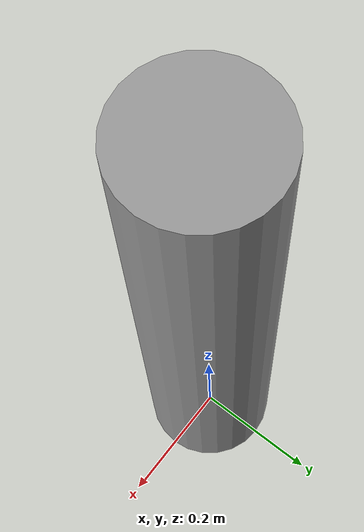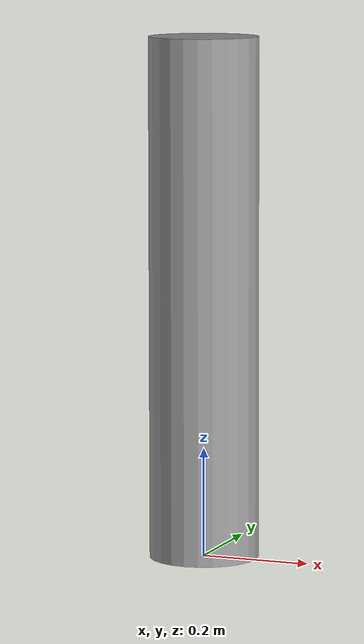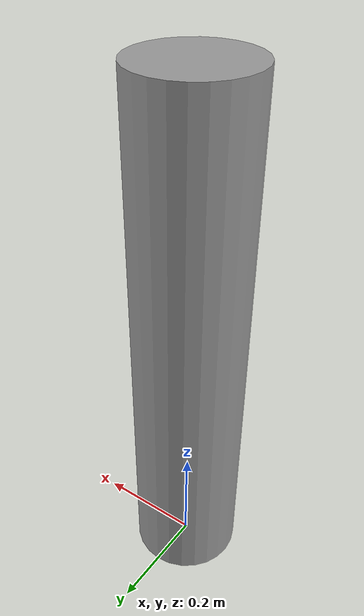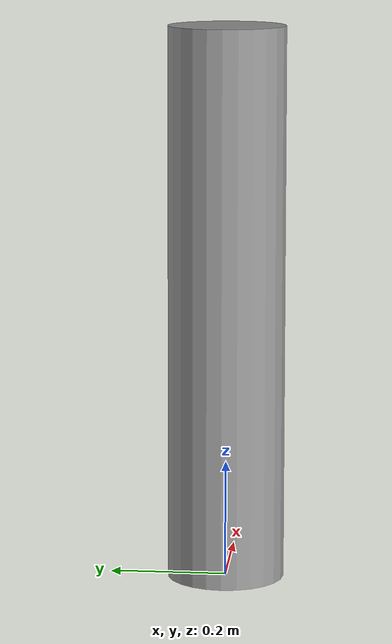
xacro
<?xml version="1.0"?>
<robot xmlns:xacro="http://www.ros.org/wiki/xacro" name="mypedestal" >
  <xacro:property name="pe_radius" value="0.1" />
  <xacro:property name="pedestal_height" value="0.95" />
  <link name="mypedestal">
    <inertial>
      <origin xyz="0 0 ${pedestal_height/2}" rpy="0 0 0"/>
      <mass value="20" />
      <inertia  ixx="200" ixy="200"  ixz="200"  iyy="200"  iyz="200"  izz="200" />
    </inertial>
    <visual>
      <origin xyz="0 0 ${pedestal_height/2}" rpy="0 0 0"/>
      <geometry>
        <cylinder radius="${pe_radius}" length="${pedestal_height}"/>
      </geometry>
    </visual>
    <collision>
      <origin xyz="0 0 ${pedestal_height/2}" rpy="0 0 0"/>
      <geometry>
        <cylinder radius="${pe_radius}" length="${pedestal_height}"/>
      </geometry>
    </collision>
  </link>
  <gazebo reference="mypedestal">
    <mu1>0.2</mu1>
    <mu2>0.2</mu2>
    <material>Gazebo/Gray</material>
    <static>True</static>
  </gazebo>
</robot>
